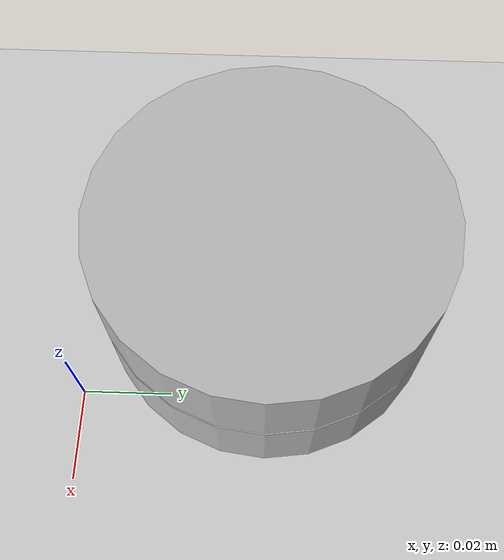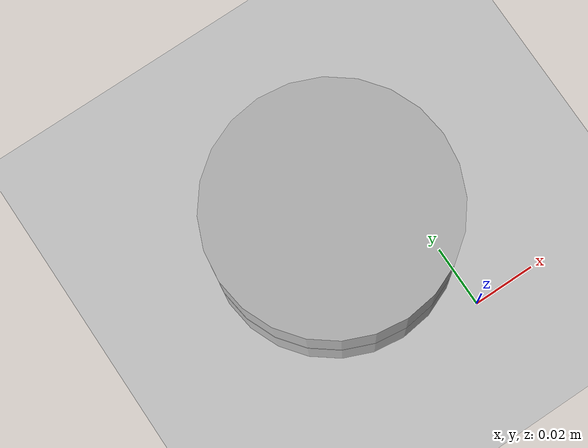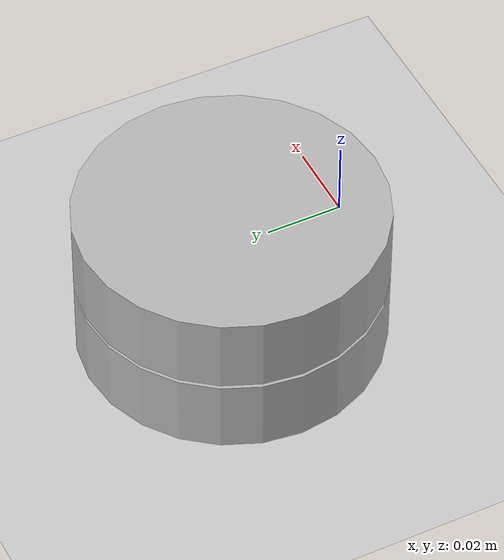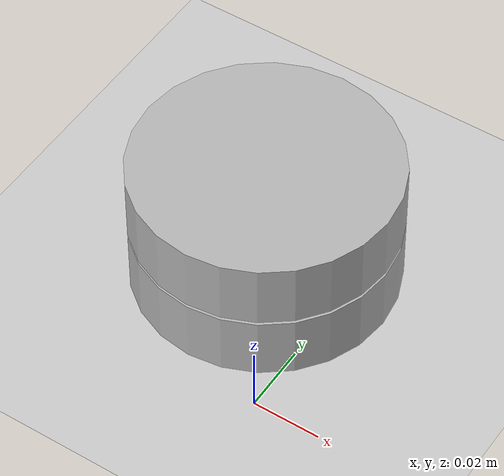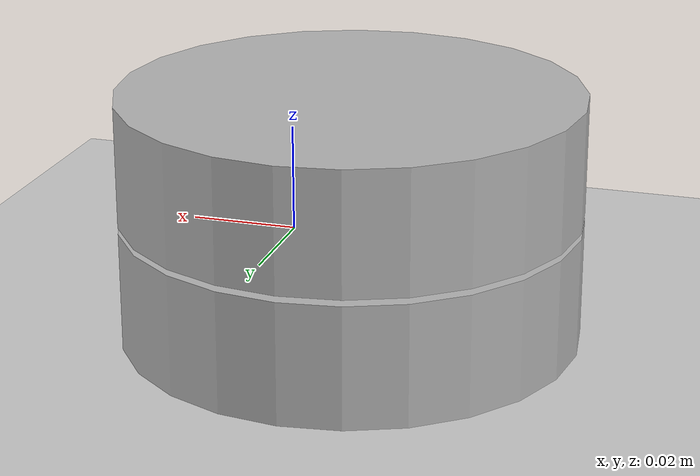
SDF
<sdf version="1.6">
 <world name="default">
  <light name="sun" type="directional">
   <pose>0 0 10 0 -0 0</pose>
   <diffuse>0.8 0.8 0.8 1</diffuse>
   <specular>0.2 0.2 0.2 1</specular>
   <attenuation>
    <range>1000</range>
    <constant>0.9</constant>
    <linear>0.01</linear>
    <quadratic>0.001</quadratic>
   </attenuation>
   <direction>-0.5 0.1 -0.9</direction>
  </light>
  <model name="ground_plane">
   <static>1</static>
   <link name="link">
    <collision name="collision">
     <geometry><plane><normal>0 0 1</normal><size>100 100</size></plane></geometry>
     <surface>
      <contact><collide_bitmask>65535</collide_bitmask></contact>
      <friction><ode><mu>100</mu><mu2>50</mu2></ode></friction>
     </surface>
    </collision>
    <visual name="visual">
     <cast_shadows>0</cast_shadows>
     <geometry><plane><normal>0 0 1</normal><size>100 100</size></plane></geometry>
     <material>
      <script><uri>file://media/materials/scripts/gazebo.material</uri><name>Gazebo/Grey</name></script>
     </material>
    </visual>
   </link>
  </model>
  <gravity>0 0 -9.8</gravity>
  <magnetic_field>6e-06 2.3e-05 -4.2e-05</magnetic_field>
  <atmosphere type="adiabatic"/>
  <physics name="default_physics" default="0" type="ode">
   <max_step_size>0.001</max_step_size>
   <real_time_factor>1</real_time_factor>
   <real_time_update_rate>1000</real_time_update_rate>
  </physics>
  <scene><ambient>0.4 0.4 0.4 1</ambient><background>0.7 0.7 0.7 1</background><shadows>1</shadows></scene>
  <audio><device>default</device></audio>
  <spherical_coordinates>
   <surface_model>EARTH_WGS84</surface_model>
   <latitude_deg>0</latitude_deg>
   <longitude_deg>0</longitude_deg>
   <elevation>0</elevation>
   <heading_deg>0</heading_deg>
  </spherical_coordinates>
  <model name="rplidar">
   <link name="base">
    <pose>0 0 0.01 0 -0 0</pose>
    <collision name="base_collision">
     <geometry><cylinder><radius>0.038</radius><length>0.02</length></cylinder></geometry>
    </collision>
    <visual name="base_visual">
     <geometry><cylinder><radius>0.038</radius><length>0.02</length></cylinder></geometry>
    </visual>
    <inertial>
     <inertia><ixx>1</ixx><ixy>0</ixy><ixz>0</ixz><iyy>1</iyy><iyz>0</iyz><izz>1</izz></inertia>
     <mass>1</mass>
    </inertial>
   </link>
   <link name="top">
    <sensor name="sensor" type="ray">
     <pose>0 0 0.002 0 -0 1.5707</pose>
     <visualize>1</visualize>
     <topic>range</topic>
     <update_rate>30</update_rate>
     <ray>
      <noise><type>gaussian</type><mean>0</mean><stddev>0.02</stddev></noise>
      <scan>
       <horizontal>
        <samples>120</samples>
        <resolution>1</resolution>
        <min_angle>0</min_angle>
        <max_angle>6.28</max_angle>
       </horizontal>
       <vertical><samples>1</samples><min_angle>0</min_angle><max_angle>0</max_angle></vertical>
      </scan>
      <range><min>0.15</min><max>12</max><resolution>0.02</resolution></range>
     </ray>
     <plugin name="sensor_plugin" filename="libgazebo_ros_laser.so">
      <topicName>/my_car/rplidar/scan</topicName>
      <frameName>/my_car/rplidar/frame</frameName>
     </plugin>
    </sensor>
    <pose>0 0 0.031 0 -0 0</pose>
    <collision name="top_collision">
     <geometry><cylinder><radius>0.038</radius><length>0.02</length></cylinder></geometry>
    </collision>
    <visual name="top_visual">
     <geometry><cylinder><radius>0.038</radius><length>0.02</length></cylinder></geometry>
    </visual>
    <inertial>
     <inertia><ixx>1</ixx><ixy>0</ixy><ixz>0</ixz><iyy>1</iyy><iyz>0</iyz><izz>1</izz></inertia>
     <mass>1</mass>
    </inertial>
   </link>
   <joint name="joint" type="revolute">
    <pose>0 0 -0.016 0 -0 0</pose>
    <parent>base</parent>
    <child>top</child>
    <axis>
     <xyz>0 0 1</xyz>
     <limit><lower>-1e+16</lower><upper>1e+16</upper></limit>
     <use_parent_model_frame>0</use_parent_model_frame>
     <dynamics><spring_reference>0</spring_reference><spring_stiffness>0</spring_stiffness></dynamics>
    </axis>
   </joint>
   <pose>-0.023978 0.041928 0 4e-06 1.6e-05 -1e-06</pose>
  </model>
 </world>
</sdf>
